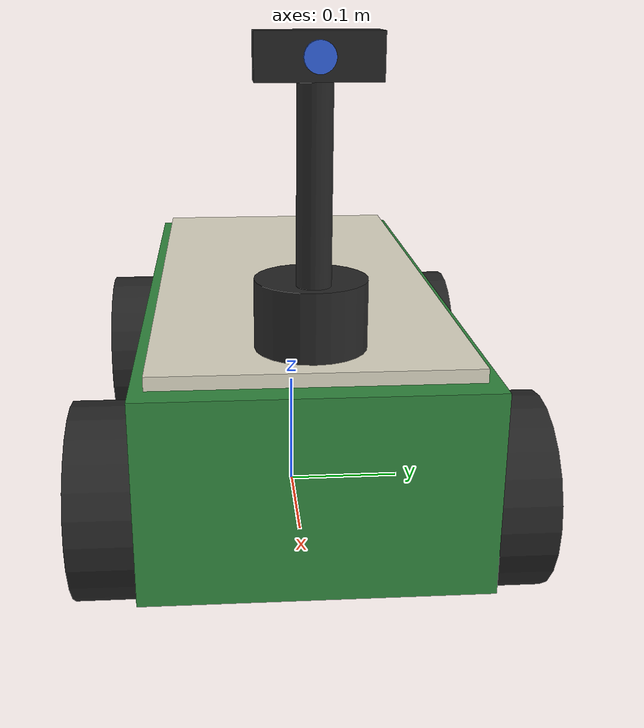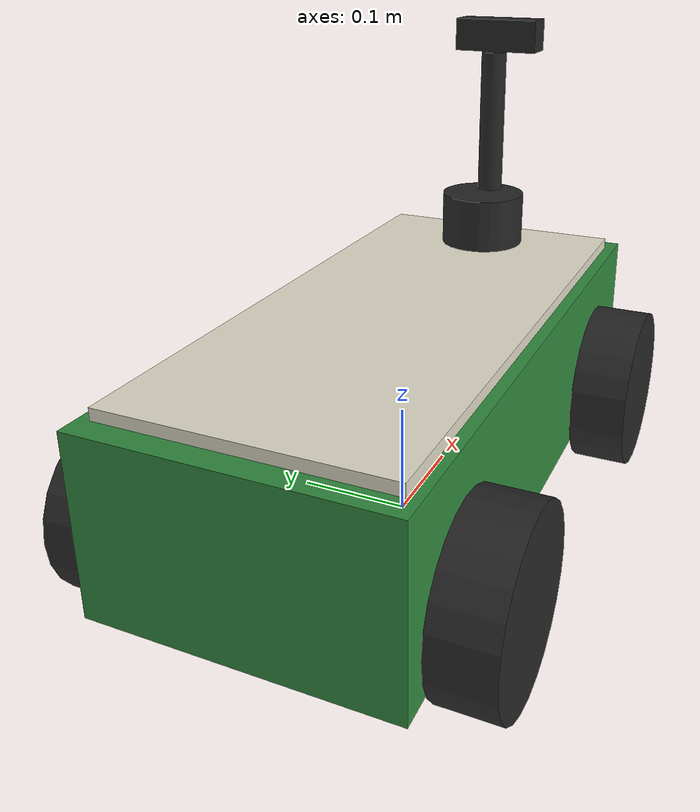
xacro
<?xml version="1.0"?>
<!--
  Greenhouse robot: 4-wheel skid-steer base, no sensors (teleop only).
  Frames follow REP-103 (x forward, y left, z up).
-->
<robot name="greenhouse_bot" xmlns:xacro="http://www.ros.org/wiki/xacro">

  <xacro:include filename="$(find midterm_description)/urdf/inertial_macros.xacro"/>

  <!-- Chassis -->
  <xacro:property name="chassis_length" value="0.55"/>
  <xacro:property name="chassis_width" value="0.25"/>
  <xacro:property name="chassis_height" value="0.15"/>
  <xacro:property name="chassis_z" value="0.04"/>
  <xacro:property name="chassis_mass" value="8.0"/>

  <!-- Wheels -->
  <xacro:property name="wheel_radius" value="0.075"/>
  <xacro:property name="wheel_width" value="0.05"/>
  <xacro:property name="wheel_mass" value="0.5"/>
  <xacro:property name="wheel_x" value="0.18"/>
  <xacro:property name="wheel_y" value="0.15"/>
  <xacro:property name="wheel_mu_lateral" value="0.3"/>
  <xacro:property name="wheel_separation_effective" value="0.35"/>

  <material name="leaf_green"><color rgba="0.20 0.55 0.25 1.0"/></material>
  <material name="dark_grey"><color rgba="0.15 0.15 0.15 1.0"/></material>
  <material name="cream"><color rgba="0.90 0.88 0.80 1.0"/></material>

  <!-- Base frames -->
  <link name="base_footprint"/>

  <link name="base_link"/>

  <joint name="base_footprint_joint" type="fixed">
    <parent link="base_footprint"/>
    <child link="base_link"/>
    <origin xyz="0 0 ${wheel_radius}" rpy="0 0 0"/>
  </joint>

  <!-- Chassis -->
  <link name="chassis">
    <visual>
      <geometry><box size="${chassis_length} ${chassis_width} ${chassis_height}"/></geometry>
      <material name="leaf_green"/>
    </visual>
    <!-- Cream top plate -->
    <visual>
      <origin xyz="0 0 ${chassis_height/2 + 0.005}" rpy="0 0 0"/>
      <geometry><box size="${chassis_length - 0.04} ${chassis_width - 0.02} 0.01"/></geometry>
      <material name="cream"/>
    </visual>
    <collision>
      <geometry><box size="${chassis_length} ${chassis_width} ${chassis_height}"/></geometry>
    </collision>
    <xacro:box_inertia m="${chassis_mass}" x="${chassis_length}" y="${chassis_width}" z="${chassis_height}">
      <origin xyz="0 0 0" rpy="0 0 0"/>
    </xacro:box_inertia>
  </link>

  <joint name="chassis_joint" type="fixed">
    <parent link="base_link"/>
    <child link="chassis"/>
    <origin xyz="0 0 ${chassis_z}" rpy="0 0 0"/>
  </joint>

  <!-- Wheel macro: prefix e.g. front_left, x/y signs place it on the chassis -->
  <xacro:macro name="wheel" params="prefix x_sign y_sign">
    <link name="${prefix}_wheel">
      <visual>
        <origin xyz="0 0 0" rpy="${pi/2} 0 0"/>
        <geometry><cylinder radius="${wheel_radius}" length="${wheel_width}"/></geometry>
        <material name="dark_grey"/>
      </visual>
      <collision>
        <origin xyz="0 0 0" rpy="${pi/2} 0 0"/>
        <geometry><cylinder radius="${wheel_radius}" length="${wheel_width}"/></geometry>
      </collision>
      <xacro:cylinder_inertia m="${wheel_mass}" r="${wheel_radius}" h="${wheel_width}">
        <origin xyz="0 0 0" rpy="${pi/2} 0 0"/>
      </xacro:cylinder_inertia>
    </link>

    <joint name="${prefix}_wheel_joint" type="continuous">
      <parent link="base_link"/>
      <child link="${prefix}_wheel"/>
      <origin xyz="${x_sign * wheel_x} ${y_sign * wheel_y} 0" rpy="0 0 0"/>
      <axis xyz="0 1 0"/>
    </joint>

    <gazebo reference="${prefix}_wheel">
      <mu1>${wheel_mu_lateral}</mu1>
      <mu2>1.0</mu2>
      <fdir1>0 0 1</fdir1>
    </gazebo>
  </xacro:macro>

  <xacro:wheel prefix="front_left" x_sign="1" y_sign="1"/>
  <xacro:wheel prefix="front_right" x_sign="1" y_sign="-1"/>
  <xacro:wheel prefix="rear_left" x_sign="-1" y_sign="1"/>
  <xacro:wheel prefix="rear_right" x_sign="-1" y_sign="-1"/>

  <xacro:include filename="$(find midterm_description)/urdf/gazebo.xacro"/>

  <!-- Sensors -->
  <xacro:include filename="$(find midterm_description)/urdf/camera.xacro"/>
  <xacro:include filename="$(find midterm_description)/urdf/lidar.xacro"/>

</robot>

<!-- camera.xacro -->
<robot xmlns:xacro="http://www.ros.org/wiki/xacro">

  <xacro:property name="camera_mast_x" value="0.22"/>
  <xacro:property name="camera_mast_y" value="0.0"/>
  <xacro:property name="camera_yaw" value="0.0"/>          <!-- 0 = forward, -pi/2 = right side -->
  <xacro:property name="camera_z" value="0.325"/>          <!-- from base_link (+0.075 → 0.40 m above ground) -->
  <xacro:property name="camera_mast_radius" value="0.012"/>
  <xacro:property name="camera_mast_bottom" value="${chassis_z + chassis_height/2}"/>
  <xacro:property name="camera_mast_length" value="${camera_z - 0.015 - camera_mast_bottom}"/>

  <link name="camera_mast">
    <visual>
      <geometry><cylinder radius="${camera_mast_radius}" length="${camera_mast_length}"/></geometry>
      <material name="dark_grey"/>
    </visual>
    <xacro:cylinder_inertia m="0.03" r="${camera_mast_radius}" h="${camera_mast_length}">
      <origin xyz="0 0 0" rpy="0 0 0"/>
    </xacro:cylinder_inertia>
  </link>

  <joint name="camera_mast_joint" type="fixed">
    <parent link="base_link"/>
    <child link="camera_mast"/>
    <origin xyz="${camera_mast_x} ${camera_mast_y} ${camera_mast_bottom + camera_mast_length/2}" rpy="0 0 0"/>
  </joint>

  <!-- camera_link: x points where the camera looks -->
  <link name="camera_link">
    <visual>
      <geometry><box size="0.03 0.08 0.03"/></geometry>
      <material name="dark_grey"/>
    </visual>
    <!-- Lens -->
    <visual>
      <origin xyz="0.017 0 0" rpy="0 ${pi/2} 0"/>
      <geometry><cylinder radius="0.01" length="0.005"/></geometry>
      <material name="lens_blue"><color rgba="0.2 0.4 0.9 1.0"/></material>
    </visual>
    <collision>
      <geometry><box size="0.03 0.08 0.03"/></geometry>
    </collision>
    <xacro:box_inertia m="0.1" x="0.03" y="0.08" z="0.03">
      <origin xyz="0 0 0" rpy="0 0 0"/>
    </xacro:box_inertia>
  </link>

  <joint name="camera_joint" type="fixed">
    <parent link="base_link"/>
    <child link="camera_link"/>
    <origin xyz="${camera_mast_x + 0.015*cos(camera_yaw)} ${camera_mast_y + 0.015*sin(camera_yaw)} ${camera_z}"
            rpy="0 0 ${camera_yaw}"/>
  </joint>

  <!-- Optical frame (REP-103): z forward, x right, y down. Images are stamped with this frame. -->
  <link name="camera_optical_link"/>

  <joint name="camera_optical_joint" type="fixed">
    <parent link="camera_link"/>
    <child link="camera_optical_link"/>
    <origin xyz="0 0 0" rpy="${-pi/2} 0 ${-pi/2}"/>
  </joint>

  <gazebo reference="camera_link">
    <sensor name="camera" type="camera">
      <topic>camera/image</topic>
      <gz_frame_id>camera_optical_link</gz_frame_id>
      <update_rate>15</update_rate>
      <always_on>true</always_on>
      <visualize>true</visualize>
      <camera>
        <camera_info_topic>camera/camera_info</camera_info_topic>
        <!-- 90° so fruit on the rows beside the aisle stays in view until it is close -->
        <horizontal_fov>1.5708</horizontal_fov>
        <image>
          <width>640</width>
          <height>480</height>
          <format>R8G8B8</format>
        </image>
        <clip>
          <near>0.05</near>
          <far>15.0</far>
        </clip>
        <noise>
          <type>gaussian</type>
          <mean>0.0</mean>
          <stddev>0.005</stddev>
        </noise>
      </camera>
    </sensor>
  </gazebo>

</robot>

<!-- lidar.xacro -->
<robot xmlns:xacro="http://www.ros.org/wiki/xacro">

  <xacro:property name="lidar_x" value="0.2"/>
  <xacro:property name="lidar_radius" value="0.04"/>
  <xacro:property name="lidar_length" value="0.05"/>

  <link name="lidar_link">
    <visual>
      <geometry><cylinder radius="${lidar_radius}" length="${lidar_length}"/></geometry>
      <material name="dark_grey"/>
    </visual>
    <collision>
      <geometry><cylinder radius="${lidar_radius}" length="${lidar_length}"/></geometry>
    </collision>
    <xacro:cylinder_inertia m="0.2" r="${lidar_radius}" h="${lidar_length}">
      <origin xyz="0 0 0" rpy="0 0 0"/>
    </xacro:cylinder_inertia>
  </link>

  <joint name="lidar_joint" type="fixed">
    <parent link="base_link"/>
    <child link="lidar_link"/>
    <!-- Sits on the 1 cm top plate -->
    <origin xyz="${lidar_x} 0 ${chassis_z + chassis_height/2 + 0.01 + lidar_length/2}" rpy="0 0 0"/>
  </joint>

  <!-- URDF->SDF merges lidar_link into its parent, so gz_frame_id sets the frame_id of the scans -->
  <gazebo reference="lidar_link">
    <sensor name="lidar" type="gpu_lidar">
      <topic>scan</topic>
      <gz_frame_id>lidar_link</gz_frame_id>
      <update_rate>10</update_rate>
      <always_on>true</always_on>
      <visualize>true</visualize>
      <lidar>
        <scan>
          <horizontal>
            <samples>360</samples>
            <resolution>1</resolution>
            <min_angle>${-pi}</min_angle>
            <max_angle>${pi}</max_angle>
          </horizontal>
        </scan>
        <range>
          <min>0.12</min>
          <max>8.0</max>
          <resolution>0.01</resolution>
        </range>
        <noise>
          <type>gaussian</type>
          <mean>0.0</mean>
          <stddev>0.01</stddev>
        </noise>
      </lidar>
    </sensor>
  </gazebo>

</robot>
